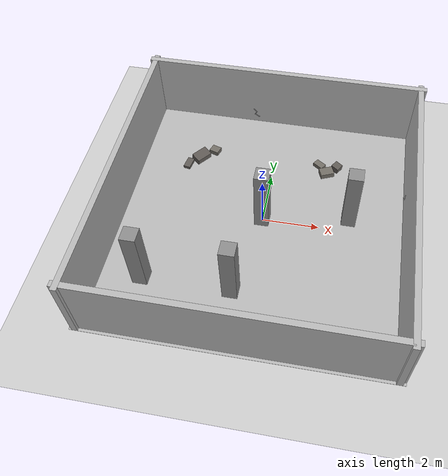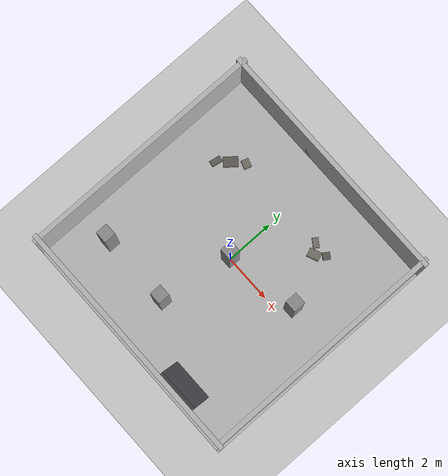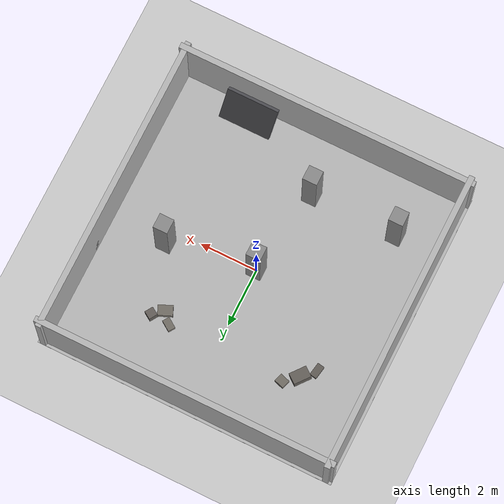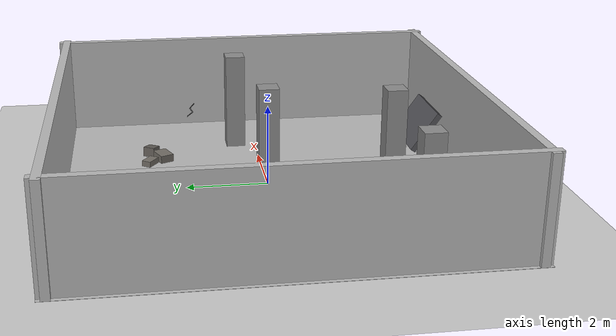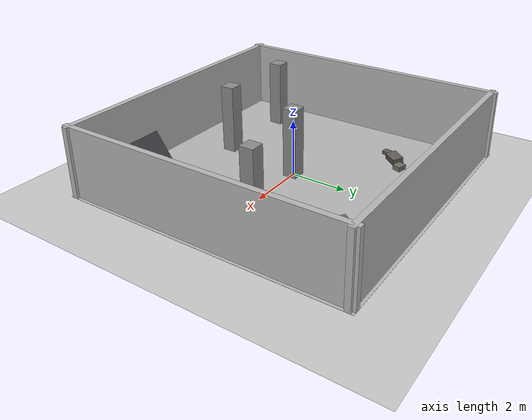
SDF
<?xml version="1.0"?>
<sdf version="1.6">
  <world name="default">

    <include>
      <uri>model://ground_plane</uri>
    </include>

    <include>
      <uri>model://sun</uri>
    </include>

    <scene>
      <shadows>false</shadows>
    </scene>

    <gui fullscreen='0'>
      <camera name='user_camera'>
        <pose frame=''>0.319654 -0.235002 9.29441 0 1.5138 0.009599</pose>
        <view_controller>orbit</view_controller>
        <projection_type>perspective</projection_type>
      </camera>
    </gui>

    <physics type="ode">
      <real_time_update_rate>1000.0</real_time_update_rate>
      <max_step_size>0.001</max_step_size>
      <real_time_factor>1</real_time_factor>
      <ode>
        <solver>
          <type>quick</type>
          <iters>150</iters>
          <precon_iters>0</precon_iters>
          <sor>1.400000</sor>
          <use_dynamic_moi_rescaling>1</use_dynamic_moi_rescaling>
        </solver>
        <constraints>
          <cfm>0.00001</cfm>
          <erp>0.2</erp>
          <contact_max_correcting_vel>2000.000000</contact_max_correcting_vel>
          <contact_surface_layer>0.01000</contact_surface_layer>
        </constraints>
      </ode>
    </physics>

    <model name="building_outer_walls">
      <static>true</static>
      <link name="walls">

        <collision name="north_collision">
          <pose>0 5 1.25 0 0 0</pose>
          <geometry><box><size>10.4 0.2 2.5</size></box></geometry>
        </collision>
        <visual name="north_visual">
          <pose>0 5 1.25 0 0 0</pose>
          <geometry><box><size>10.4 0.2 2.5</size></box></geometry>
          <material><script><uri>file:///home/sara/earthquake_ws/models/damaged_textures/materials/scripts</uri><uri>file:///home/sara/earthquake_ws/models/damaged_textures/materials/textures</uri><name>DamagedBuilding/Stucco</name></script></material>
        </visual>

        <collision name="south_collision">
          <pose>0 -5 1.25 0 0 0</pose>
          <geometry><box><size>10.4 0.2 2.5</size></box></geometry>
        </collision>
        <visual name="south_visual">
          <pose>0 -5 1.25 0 0 0</pose>
          <geometry><box><size>10.4 0.2 2.5</size></box></geometry>
          <material><script><uri>file:///home/sara/earthquake_ws/models/damaged_textures/materials/scripts</uri><uri>file:///home/sara/earthquake_ws/models/damaged_textures/materials/textures</uri><name>DamagedBuilding/Stucco</name></script></material>
        </visual>

        <collision name="east_collision">
          <pose>5 0 1.25 0 0 0</pose>
          <geometry><box><size>0.2 10.4 2.5</size></box></geometry>
        </collision>
        <visual name="east_visual">
          <pose>5 0 1.25 0 0 0</pose>
          <geometry><box><size>0.2 10.4 2.5</size></box></geometry>
          <material><script><uri>file:///home/sara/earthquake_ws/models/damaged_textures/materials/scripts</uri><uri>file:///home/sara/earthquake_ws/models/damaged_textures/materials/textures</uri><name>DamagedBuilding/Stucco</name></script></material>
        </visual>

        <collision name="west_collision">
          <pose>-5 0 1.25 0 0 0</pose>
          <geometry><box><size>0.2 10.4 2.5</size></box></geometry>
        </collision>
        <visual name="west_visual">
          <pose>-5 0 1.25 0 0 0</pose>
          <geometry><box><size>0.2 10.4 2.5</size></box></geometry>
          <material><script><uri>file:///home/sara/earthquake_ws/models/damaged_textures/materials/scripts</uri><uri>file:///home/sara/earthquake_ws/models/damaged_textures/materials/textures</uri><name>DamagedBuilding/Stucco</name></script></material>
        </visual>

      </link>
    </model>

    <model name="cracks_group_1">
      <static>true</static>
      <link name="cracks">
        <visual name="crack_north_1">
          <pose>-1.140 4.895 0.550 0 0.862 0</pose>
          <geometry><box><size>0.204 0.01 0.03</size></box></geometry>
          <material><ambient>0.08 0.08 0.08 1</ambient><diffuse>0.08 0.08 0.08 1</diffuse></material>
        </visual>
        <visual name="crack_north_2">
          <pose>-1.120 4.895 0.420 0 2.159 0</pose>
          <geometry><box><size>0.164 0.01 0.03</size></box></geometry>
          <material><ambient>0.08 0.08 0.08 1</ambient><diffuse>0.08 0.08 0.08 1</diffuse></material>
        </visual>
        <visual name="crack_north_3">
          <pose>-1.070 4.895 0.300 0 0.588 0</pose>
          <geometry><box><size>0.236 0.01 0.03</size></box></geometry>
          <material><ambient>0.08 0.08 0.08 1</ambient><diffuse>0.08 0.08 0.08 1</diffuse></material>
        </visual>
        <visual name="crack_east_1">
          <pose>4.895 1.560 0.510 -0.862 0 0</pose>
          <geometry><box><size>0.01 0.204 0.03</size></box></geometry>
          <material><ambient>0.08 0.08 0.08 1</ambient><diffuse>0.08 0.08 0.08 1</diffuse></material>
        </visual>
        <visual name="crack_east_2">
          <pose>4.895 1.580 0.380 -2.159 0 0</pose>
          <geometry><box><size>0.01 0.164 0.03</size></box></geometry>
          <material><ambient>0.08 0.08 0.08 1</ambient><diffuse>0.08 0.08 0.08 1</diffuse></material>
        </visual>
        <visual name="crack_east_3">
          <pose>4.895 1.620 0.260 -0.644 0 0</pose>
          <geometry><box><size>0.01 0.220 0.03</size></box></geometry>
          <material><ambient>0.08 0.08 0.08 1</ambient><diffuse>0.08 0.08 0.08 1</diffuse></material>
        </visual>
      </link>
    </model>

    <model name="debris_group_1">
      <static>true</static>
      <link name="debris">
        <collision name="d1_col"><pose>2.0 2.5 0.10 0 0 0.4</pose><geometry><box><size>0.50 0.35 0.20</size></box></geometry></collision>
        <visual name="d1_vis"><pose>2.0 2.5 0.10 0 0 0.4</pose><geometry><box><size>0.50 0.35 0.20</size></box></geometry><material><ambient>0.45 0.43 0.40 1</ambient><diffuse>0.45 0.43 0.40 1</diffuse></material></visual>
        <collision name="d2_col"><pose>2.35 2.8 0.125 0.1 0 1.0</pose><geometry><box><size>0.30 0.30 0.25</size></box></geometry></collision>
        <visual name="d2_vis"><pose>2.35 2.8 0.125 0.1 0 1.0</pose><geometry><box><size>0.30 0.30 0.25</size></box></geometry><material><ambient>0.38 0.36 0.34 1</ambient><diffuse>0.38 0.36 0.34 1</diffuse></material></visual>
        <collision name="d3_col"><pose>1.7 2.85 0.075 0 0 -0.6</pose><geometry><box><size>0.40 0.25 0.15</size></box></geometry></collision>
        <visual name="d3_vis"><pose>1.7 2.85 0.075 0 0 -0.6</pose><geometry><box><size>0.40 0.25 0.15</size></box></geometry><material><ambient>0.45 0.43 0.40 1</ambient><diffuse>0.45 0.43 0.40 1</diffuse></material></visual>
        <collision name="d4_col"><pose>-2.8 2.5 0.125 0.12 0 0.9</pose><geometry><box><size>0.60 0.40 0.25</size></box></geometry></collision>
        <visual name="d4_vis"><pose>-2.8 2.5 0.125 0.12 0 0.9</pose><geometry><box><size>0.60 0.40 0.25</size></box></geometry><material><ambient>0.38 0.36 0.34 1</ambient><diffuse>0.38 0.36 0.34 1</diffuse></material></visual>
        <collision name="d5_col"><pose>-2.35 2.9 0.09 0 0 -0.3</pose><geometry><box><size>0.35 0.30 0.18</size></box></geometry></collision>
        <visual name="d5_vis"><pose>-2.35 2.9 0.09 0 0 -0.3</pose><geometry><box><size>0.35 0.30 0.18</size></box></geometry><material><ambient>0.45 0.43 0.40 1</ambient><diffuse>0.45 0.43 0.40 1</diffuse></material></visual>
        <collision name="d6_col"><pose>-3.2 2.1 0.06 0 0 1.4</pose><geometry><box><size>0.45 0.25 0.12</size></box></geometry></collision>
        <visual name="d6_vis"><pose>-3.2 2.1 0.06 0 0 1.4</pose><geometry><box><size>0.45 0.25 0.12</size></box></geometry><material><ambient>0.38 0.36 0.34 1</ambient><diffuse>0.38 0.36 0.34 1</diffuse></material></visual>
      </link>
    </model>

    <model name="collapse_group_1">
      <static>true</static>
      <link name="slab">
        <collision name="slab_col">
          <pose>2.5 -4.495 0.535 0.611 0 0</pose>
          <geometry><box><size>1.8 0.15 1.2</size></box></geometry>
        </collision>
        <visual name="slab_vis">
          <pose>2.5 -4.495 0.535 0.611 0 0</pose>
          <geometry><box><size>1.8 0.15 1.2</size></box></geometry>
          <material><ambient>0.32 0.32 0.34 1</ambient><diffuse>0.32 0.32 0.34 1</diffuse></material>
        </visual>
      </link>
    </model>

    <model name="building_floor">
      <static>true</static>
      <link name="floor">
        <visual name="floor_visual">
          <pose>0 0 0 0 0 0</pose>
          <geometry><box><size>10.4 10.4 0.006</size></box></geometry>
          <material>
            <script>
              <uri>file:///home/sara/earthquake_ws/models/damaged_textures/materials/scripts</uri>
              <uri>file:///home/sara/earthquake_ws/models/damaged_textures/materials/textures</uri>
              <name>DamagedBuilding/Floor</name>
            </script>
          </material>
        </visual>
      </link>
    </model>

    <model name="columns_group_1">
      <static>true</static>
      <link name="columns">
        <collision name="c1_col"><pose>0 0 1.25 0 0 0</pose><geometry><box><size>0.5 0.5 2.5</size></box></geometry></collision>
        <visual name="c1_vis"><pose>0 0 1.25 0 0 0</pose><geometry><box><size>0.5 0.5 2.5</size></box></geometry><material><ambient>0.55 0.55 0.55 1</ambient><diffuse>0.55 0.55 0.55 1</diffuse></material></visual>
        <collision name="c2_col"><pose>3 0.5 1.25 0 0 0</pose><geometry><box><size>0.5 0.5 2.5</size></box></geometry></collision>
        <visual name="c2_vis"><pose>3 0.5 1.25 0 0 0</pose><geometry><box><size>0.5 0.5 2.5</size></box></geometry><material><ambient>0.55 0.55 0.55 1</ambient><diffuse>0.55 0.55 0.55 1</diffuse></material></visual>
        <collision name="c3_col"><pose>-0.5 -3 1.25 0 0 0</pose><geometry><box><size>0.5 0.5 2.5</size></box></geometry></collision>
        <visual name="c3_vis"><pose>-0.5 -3 1.25 0 0 0</pose><geometry><box><size>0.5 0.5 2.5</size></box></geometry><material><ambient>0.55 0.55 0.55 1</ambient><diffuse>0.55 0.55 0.55 1</diffuse></material></visual>
        <collision name="c4_col"><pose>-3.5 -3 1.25 0 0 0</pose><geometry><box><size>0.5 0.5 2.5</size></box></geometry></collision>
        <visual name="c4_vis"><pose>-3.5 -3 1.25 0 0 0</pose><geometry><box><size>0.5 0.5 2.5</size></box></geometry><material><ambient>0.55 0.55 0.55 1</ambient><diffuse>0.55 0.55 0.55 1</diffuse></material></visual>
      </link>
    </model>

  </world>
</sdf>
